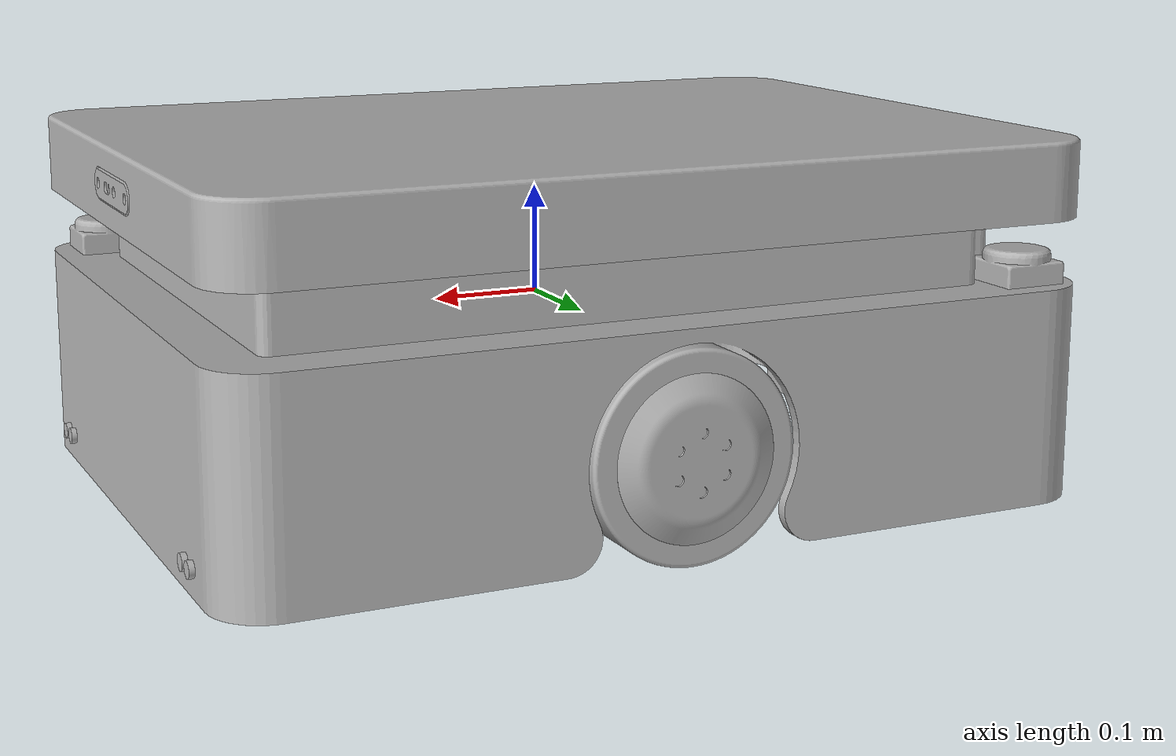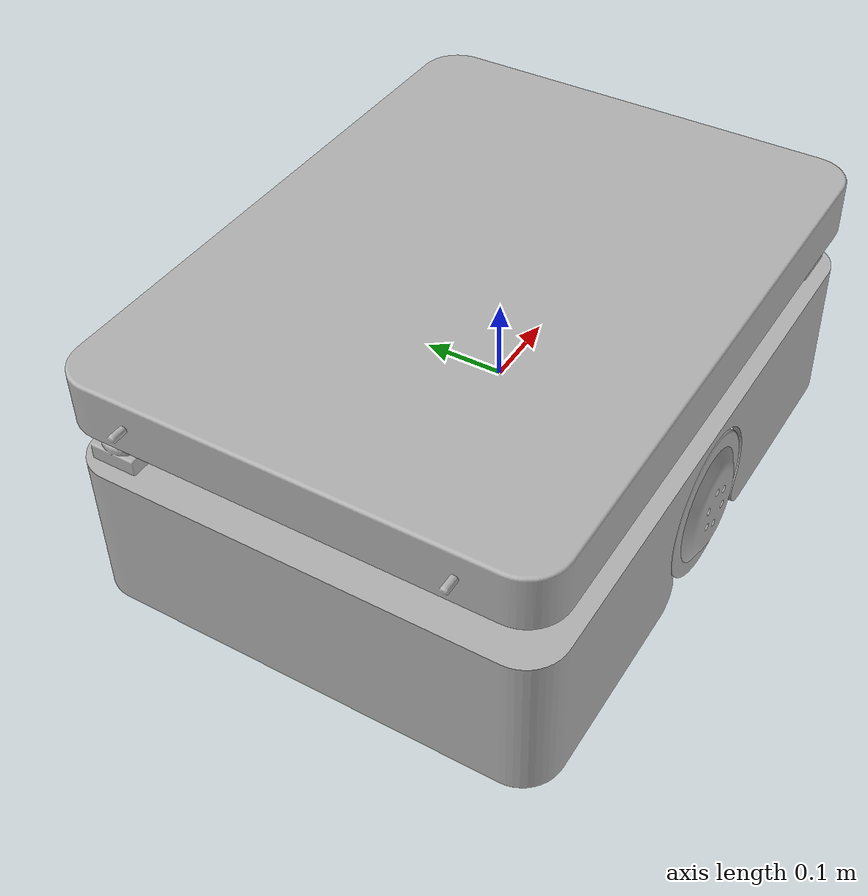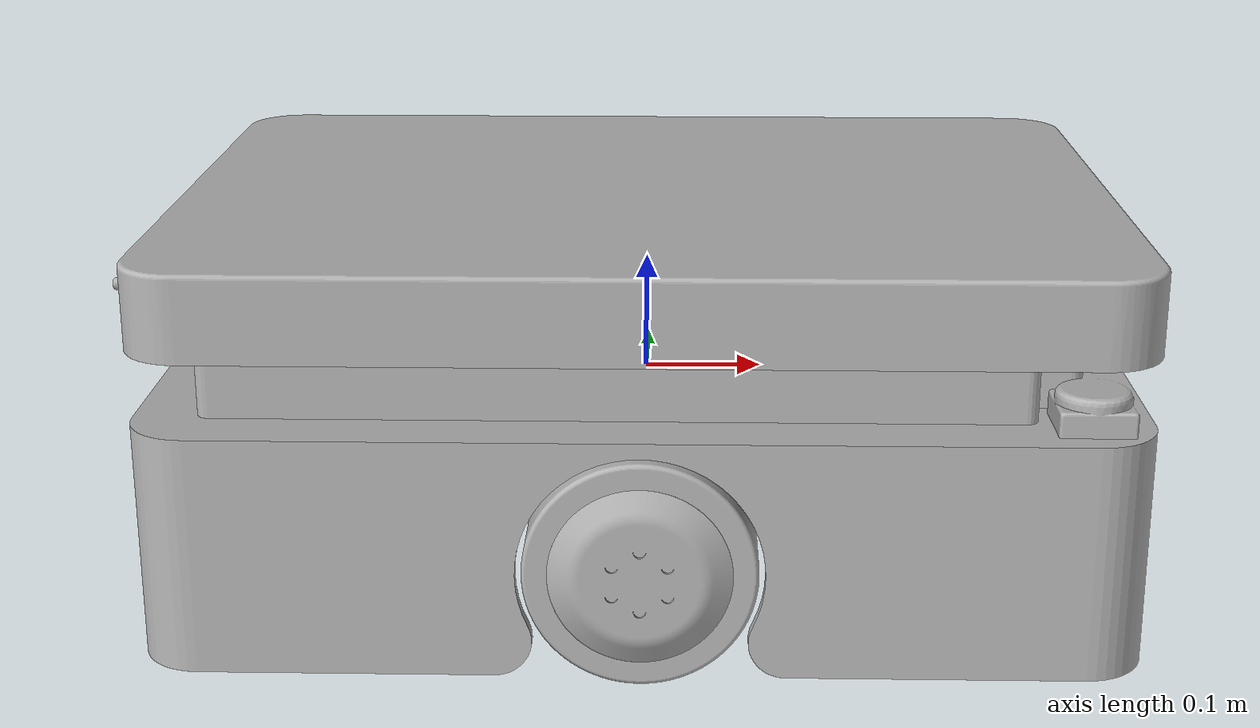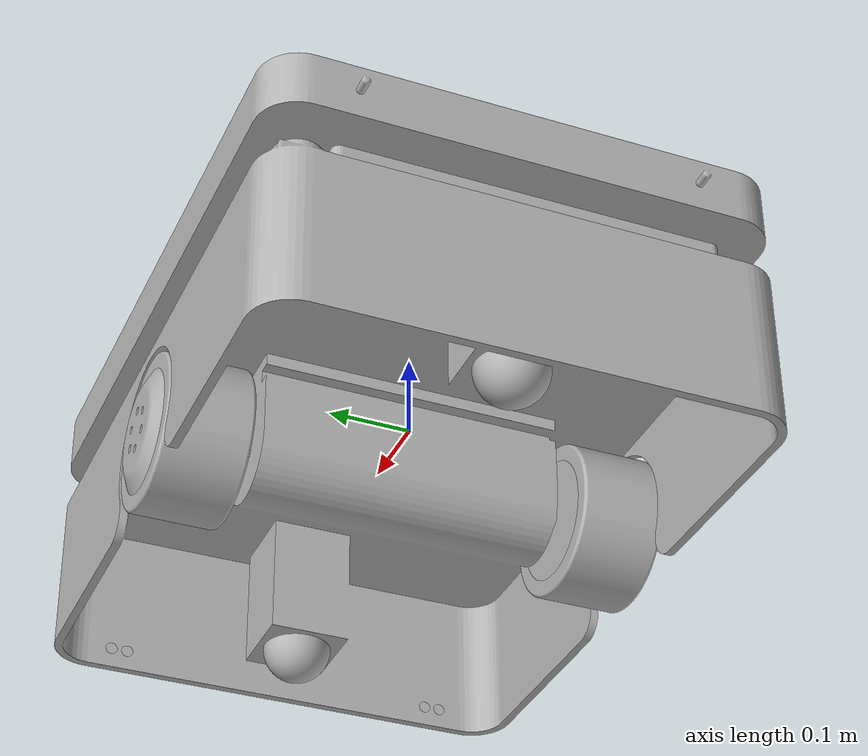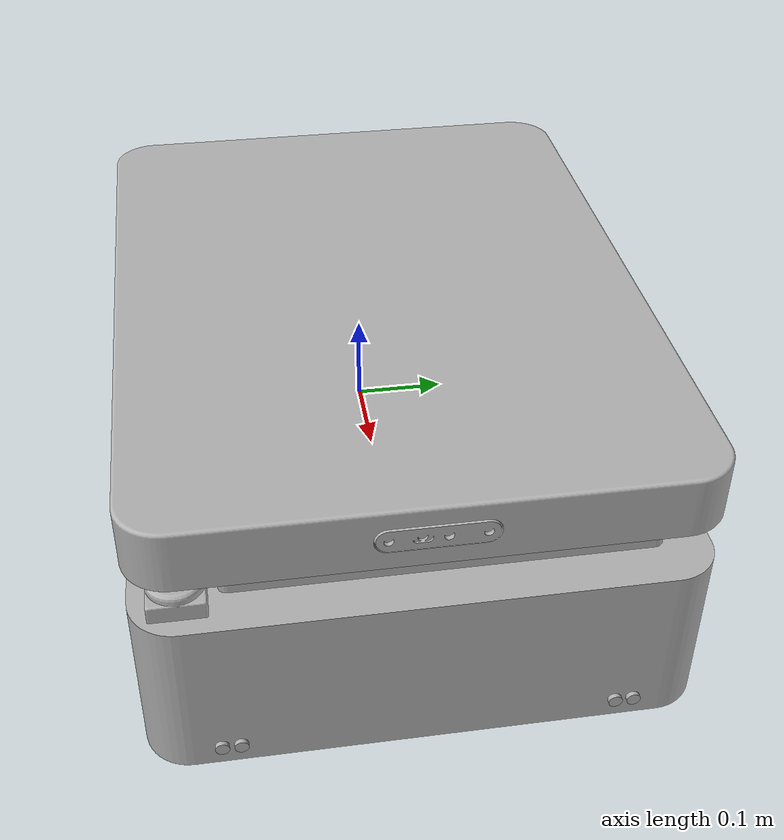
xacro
<?xml version="1.0" ?>
<robot name="amr_big_two" xmlns:xacro="http://www.ros.org/wiki/xacro">

<xacro:include filename="$(find amr_big_two_description)/urdf/materials.xacro" />
<xacro:include filename="$(find amr_big_two_description)/urdf/amr_big_two.trans" />
<xacro:include filename="$(find amr_big_two_description)/urdf/amr_big_two.gazebo" />
<xacro:include filename="$(find amr_big_two_description)/urdf/diff_dr.xacro" />
<xacro:include filename="$(find amr_big_two_description)/urdf/depth_cam.xacro" />

<link name="depth_link"/>
<link name="camera_link"/>
<link name='depth_link_optical'/>

<joint name="fix_depth" type="fixed">
  <parent link="depth_link"/>
  <child link="depth_link_optical"/>
  <origin xyz="0 0 0" rpy="-1.57 0 -1.57"/>
</joint>

<joint name="depth" type="fixed">
  <parent link="cam_v1_1"/>
  <child link="depth_link"/>
  <origin xyz="0.4 0 0" rpy="0 0 0"/>
</joint>

<joint name="camera" type="fixed">
  <parent link="cam_v1_1"/>
  <child link="camera_link"/>
  <origin xyz="0.4 0 0" rpy="0 0 0"/>
</joint>

<link name="base_link">
  <inertial>
    <origin xyz="-6.322323894127283e-05 0.018906569789233326 -0.030654111720942918" rpy="0 0 0"/>
    <mass value="120.91992932004462"/>
    <inertia ixx="2.794961" iyy="6.095063" izz="8.20746" ixy="0.136031" iyz="-0.0" ixz="-0.000844"/>
  </inertial>
  <visual>
    <origin xyz="0 0 0" rpy="0 0 0"/>
    <geometry>
      <mesh filename="file://$(find amr_big_two_description)/meshes/base_link.stl" scale="0.001 0.001 0.001"/>
    </geometry>
    <material name="silver"/>
  </visual>
  <collision>
    <origin xyz="0 0 0" rpy="0 0 0"/>
    <geometry>
      <mesh filename="file://$(find amr_big_two_description)/meshes/base_link.stl" scale="0.001 0.001 0.001"/>
    </geometry>
  </collision>
</link>

<link name="part5_v1__2__1">
  <inertial>
    <origin xyz="4.3906878133270766e-10 -4.302464876940193e-07 -4.306855561631018e-07" rpy="0 0 0"/>
    <mass value="2.40589382113527"/>
    <inertia ixx="0.001679" iyy="0.001686" izz="0.001686" ixy="-0.0" iyz="0.0" ixz="0.0"/>
  </inertial>
  <visual>
    <origin xyz="-0.325 -0.018907 0.131093" rpy="0 0 0"/>
    <geometry>
      <mesh filename="file://$(find amr_big_two_description)/meshes/part5_v1__2__1.stl" scale="0.001 0.001 0.001"/>
    </geometry>
    <material name="silver"/>
  </visual>
  <collision>
    <origin xyz="-0.325 -0.018907 0.131093" rpy="0 0 0"/>
    <geometry>
      <mesh filename="file://$(find amr_big_two_description)/meshes/part5_v1__2__1.stl" scale="0.001 0.001 0.001"/>
    </geometry>
  </collision>
</link>

<link name="part5_v1__3__1">
  <inertial>
    <origin xyz="4.390676155985318e-10 -4.302464877738166e-07 -4.306855559965683e-07" rpy="0 0 0"/>
    <mass value="2.40589382113527"/>
    <inertia ixx="0.001686" iyy="0.001686" izz="0.001679" ixy="0.0" iyz="0.0" ixz="-0.0"/>
  </inertial>
  <visual>
    <origin xyz="0.325 -0.018907 0.131093" rpy="0 0 0"/>
    <geometry>
      <mesh filename="file://$(find amr_big_two_description)/meshes/part5_v1__3__1.stl" scale="0.001 0.001 0.001"/>
    </geometry>
    <material name="silver"/>
  </visual>
  <collision>
    <origin xyz="0.325 -0.018907 0.131093" rpy="0 0 0"/>
    <geometry>
      <mesh filename="file://$(find amr_big_two_description)/meshes/part5_v1__3__1.stl" scale="0.001 0.001 0.001"/>
    </geometry>
  </collision>
</link>

<link name="part5_v1_1">
  <inertial>
    <origin xyz="-9.626552663696415e-10 0.05374742111416567 -4.30685568639233e-07" rpy="0 0 0"/>
    <mass value="4.855896297034494"/>
    <inertia ixx="0.010976" iyy="0.012566" izz="0.010976" ixy="0.0" iyz="-0.0" ixz="0.0"/>
  </inertial>
  <visual>
    <origin xyz="-0.0 -0.218907 0.081093" rpy="0 0 0"/>
    <geometry>
      <mesh filename="file://$(find amr_big_two_description)/meshes/part5_v1_1.stl" scale="0.001 0.001 0.001"/>
    </geometry>
    <material name="silver"/>
  </visual>
  <collision>
    <origin xyz="-0.0 -0.218907 0.081093" rpy="0 0 0"/>
    <geometry>
      <mesh filename="file://$(find amr_big_two_description)/meshes/part5_v1_1.stl" scale="0.001 0.001 0.001"/>
    </geometry>
  </collision>
</link>

<link name="part4_v2_1">
  <inertial>
    <origin xyz="6.415449444004547e-09 -0.05000043024648709 -4.3068555380387785e-07" rpy="0 0 0"/>
    <mass value="1.0491385705895424"/>
    <inertia ixx="0.00449" iyy="0.007241" izz="0.00449" ixy="0.0" iyz="-0.0" ixz="-0.0"/>
  </inertial>
  <visual>
    <origin xyz="-0.0 -0.318907 0.081093" rpy="0 0 0"/>
    <geometry>
      <mesh filename="file://$(find amr_big_two_description)/meshes/part4_v2_1.stl" scale="0.001 0.001 0.001"/>
    </geometry>
    <material name="silver"/>
  </visual>
  <collision>
    <origin xyz="-0.0 -0.318907 0.081093" rpy="0 0 0"/>
    <geometry>
      <mesh filename="file://$(find amr_big_two_description)/meshes/part4_v2_1.stl" scale="0.001 0.001 0.001"/>
    </geometry>
  </collision>
</link>

<link name="part5_v1__1__1">
  <inertial>
    <origin xyz="-9.62655217658419e-10 -0.053748281607141346 -4.306855433816592e-07" rpy="0 0 0"/>
    <mass value="4.855896297034494"/>
    <inertia ixx="0.010976" iyy="0.012566" izz="0.010976" ixy="-0.0" iyz="-0.0" ixz="-0.0"/>
  </inertial>
  <visual>
    <origin xyz="-0.0 0.181093 0.081093" rpy="0 0 0"/>
    <geometry>
      <mesh filename="file://$(find amr_big_two_description)/meshes/part5_v1__1__1.stl" scale="0.001 0.001 0.001"/>
    </geometry>
    <material name="silver"/>
  </visual>
  <collision>
    <origin xyz="-0.0 0.181093 0.081093" rpy="0 0 0"/>
    <geometry>
      <mesh filename="file://$(find amr_big_two_description)/meshes/part5_v1__1__1.stl" scale="0.001 0.001 0.001"/>
    </geometry>
  </collision>
</link>

<link name="part4_v2__1__1">
  <inertial>
    <origin xyz="6.415449493156268e-09 0.04999956975351136 -4.3068555424796706e-07" rpy="0 0 0"/>
    <mass value="1.0491385705895424"/>
    <inertia ixx="0.00449" iyy="0.007241" izz="0.00449" ixy="0.0" iyz="-0.0" ixz="-0.0"/>
  </inertial>
  <visual>
    <origin xyz="-0.0 0.281093 0.081093" rpy="0 0 0"/>
    <geometry>
      <mesh filename="file://$(find amr_big_two_description)/meshes/part4_v2__1__1.stl" scale="0.001 0.001 0.001"/>
    </geometry>
    <material name="silver"/>
  </visual>
  <collision>
    <origin xyz="-0.0 0.281093 0.081093" rpy="0 0 0"/>
    <geometry>
      <mesh filename="file://$(find amr_big_two_description)/meshes/part4_v2__1__1.stl" scale="0.001 0.001 0.001"/>
    </geometry>
  </collision>
</link>

<link name="cam_v1_1">
  <inertial>
    <origin xyz="0.013281155022479785 -0.0474661631573977 -4.3068555617697957e-07" rpy="0 0 0"/>
    <mass value="0.7372993663827108"/>
    <inertia ixx="0.000892" iyy="8.8e-05" izz="0.000888" ixy="-1e-06" iyz="-0.0" ixz="-0.0"/>
  </inertial>
  <visual>
    <origin xyz="-0.374 -0.066407 -0.123907" rpy="0 0 0"/>
    <geometry>
      <mesh filename="file://$(find amr_big_two_description)/meshes/cam_v1_1.stl" scale="0.001 0.001 0.001"/>
    </geometry>
    <material name="silver"/>
  </visual>
  <collision>
    <origin xyz="-0.374 -0.066407 -0.123907" rpy="0 0 0"/>
    <geometry>
      <mesh filename="file://$(find amr_big_two_description)/meshes/cam_v1_1.stl" scale="0.001 0.001 0.001"/>
    </geometry>
  </collision>
</link>

<link name="part2_v2_1">
  <inertial>
    <origin xyz="-0.34999155687100597 -0.020007576954818838 0.034342740694503535" rpy="0 0 0"/>
    <mass value="4.521693370371786"/>
    <inertia ixx="0.175661" iyy="0.297913" izz="0.470272" ixy="-0.00279" iyz="1e-06" ixz="-1e-06"/>
  </inertial>
  <visual>
    <origin xyz="-0.35 -0.038907 -0.028907" rpy="0 0 0"/>
    <geometry>
      <mesh filename="file://$(find amr_big_two_description)/meshes/part2_v2_1.stl" scale="0.001 0.001 0.001"/>
    </geometry>
    <material name="silver"/>
  </visual>
  <collision>
    <origin xyz="-0.35 -0.038907 -0.028907" rpy="0 0 0"/>
    <geometry>
      <mesh filename="file://$(find amr_big_two_description)/meshes/part2_v2_1.stl" scale="0.001 0.001 0.001"/>
    </geometry>
  </collision>
</link>

<link name="part7_v1_1">
  <inertial>
    <origin xyz="0.007500000439068566 -4.3024648671563526e-07 -4.306855559965683e-07" rpy="0 0 0"/>
    <mass value="0.02080814259151114"/>
    <inertia ixx="1e-06" iyy="1e-06" izz="1e-06" ixy="-0.0" iyz="0.0" ixz="0.0"/>
  </inertial>
  <visual>
    <origin xyz="-0.39 -0.238907 0.141093" rpy="0 0 0"/>
    <geometry>
      <mesh filename="file://$(find amr_big_two_description)/meshes/part7_v1_1.stl" scale="0.001 0.001 0.001"/>
    </geometry>
    <material name="silver"/>
  </visual>
  <collision>
    <origin xyz="-0.39 -0.238907 0.141093" rpy="0 0 0"/>
    <geometry>
      <mesh filename="file://$(find amr_big_two_description)/meshes/part7_v1_1.stl" scale="0.001 0.001 0.001"/>
    </geometry>
  </collision>
</link>

<link name="part7_v1__1__1">
  <inertial>
    <origin xyz="0.007500000439068566 -4.3024648660461295e-07 -4.306855559410572e-07" rpy="0 0 0"/>
    <mass value="0.02080814259151114"/>
    <inertia ixx="1e-06" iyy="1e-06" izz="1e-06" ixy="-0.0" iyz="0.0" ixz="0.0"/>
  </inertial>
  <visual>
    <origin xyz="-0.39 -0.218907 0.141093" rpy="0 0 0"/>
    <geometry>
      <mesh filename="file://$(find amr_big_two_description)/meshes/part7_v1__1__1.stl" scale="0.001 0.001 0.001"/>
    </geometry>
    <material name="silver"/>
  </visual>
  <collision>
    <origin xyz="-0.39 -0.218907 0.141093" rpy="0 0 0"/>
    <geometry>
      <mesh filename="file://$(find amr_big_two_description)/meshes/part7_v1__1__1.stl" scale="0.001 0.001 0.001"/>
    </geometry>
  </collision>
</link>

<link name="part7_v1__3__1">
  <inertial>
    <origin xyz="0.0075000004390688435 -4.3024648785361386e-07 -4.306855561631018e-07" rpy="0 0 0"/>
    <mass value="0.02080814259151114"/>
    <inertia ixx="1e-06" iyy="1e-06" izz="1e-06" ixy="0.0" iyz="0.0" ixz="-0.0"/>
  </inertial>
  <visual>
    <origin xyz="-0.39 0.181093 0.141093" rpy="0 0 0"/>
    <geometry>
      <mesh filename="file://$(find amr_big_two_description)/meshes/part7_v1__3__1.stl" scale="0.001 0.001 0.001"/>
    </geometry>
    <material name="silver"/>
  </visual>
  <collision>
    <origin xyz="-0.39 0.181093 0.141093" rpy="0 0 0"/>
    <geometry>
      <mesh filename="file://$(find amr_big_two_description)/meshes/part7_v1__3__1.stl" scale="0.001 0.001 0.001"/>
    </geometry>
  </collision>
</link>

<link name="part7_v1__2__1">
  <inertial>
    <origin xyz="0.0075000004390688435 -4.302464879368806e-07 -4.306855561631018e-07" rpy="0 0 0"/>
    <mass value="0.02080814259151114"/>
    <inertia ixx="1e-06" iyy="1e-06" izz="1e-06" ixy="0.0" iyz="-0.0" ixz="0.0"/>
  </inertial>
  <visual>
    <origin xyz="-0.39 0.201093 0.141093" rpy="0 0 0"/>
    <geometry>
      <mesh filename="file://$(find amr_big_two_description)/meshes/part7_v1__2__1.stl" scale="0.001 0.001 0.001"/>
    </geometry>
    <material name="silver"/>
  </visual>
  <collision>
    <origin xyz="-0.39 0.201093 0.141093" rpy="0 0 0"/>
    <geometry>
      <mesh filename="file://$(find amr_big_two_description)/meshes/part7_v1__2__1.stl" scale="0.001 0.001 0.001"/>
    </geometry>
  </collision>
</link>

<link name="part3_v1_1">
  <inertial>
    <origin xyz="-0.0004887973730421225 -4.309599892400595e-07 0.03497672917266807" rpy="0 0 0"/>
    <mass value="29.80443565344521"/>
    <inertia ixx="1.027826" iyy="1.750686" izz="2.729484" ixy="0.0" iyz="0.0" ixz="0.0"/>
  </inertial>
  <visual>
    <origin xyz="-0.0 -0.018907 -0.088907" rpy="0 0 0"/>
    <geometry>
      <mesh filename="file://$(find amr_big_two_description)/meshes/part3_v1_1.stl" scale="0.001 0.001 0.001"/>
    </geometry>
    <material name="silver"/>
  </visual>
  <collision>
    <origin xyz="-0.0 -0.018907 -0.088907" rpy="0 0 0"/>
    <geometry>
      <mesh filename="file://$(find amr_big_two_description)/meshes/part3_v1_1.stl" scale="0.001 0.001 0.001"/>
    </geometry>
  </collision>
</link>

<link name="front_lidar_link"/>
<link name="back_lidar_link"/>
<link name="laser_link"/>
<link name="imu_link"/>

<joint name="Ball 1" type="continuous">
  <origin xyz="0.325 0.018907 -0.131093" rpy="0 0 0"/>
  <parent link="base_link"/>
  <child link="part5_v1__2__1"/>
  <axis xyz="1.0 0.0 0.0"/>
</joint>

<joint name="Ball 2" type="continuous">
  <origin xyz="-0.325 0.018907 -0.131093" rpy="0 0 0"/>
  <parent link="base_link"/>
  <child link="part5_v1__3__1"/>
  <axis xyz="1.0 0.0 0.0"/>
</joint>

<joint name="Revolute 3" type="continuous">
  <origin xyz="0.0 0.218907 -0.081093" rpy="0 0 0"/>
  <parent link="base_link"/>
  <child link="part5_v1_1"/>
  <axis xyz="-0.0 1.0 0.0"/>
</joint>

<joint name="Rigid 4" type="fixed">
  <origin xyz="0.0 0.1 0.0" rpy="0 0 0"/>
  <parent link="part5_v1_1"/>
  <child link="part4_v2_1"/>
</joint>

<joint name="Revolute 5" type="continuous">
  <origin xyz="0.0 -0.181093 -0.081093" rpy="0 0 0"/>
  <parent link="base_link"/>
  <child link="part5_v1__1__1"/>
  <axis xyz="0.0 1.0 0.0"/>
</joint>

<joint name="Rigid 6" type="fixed">
  <origin xyz="0.0 -0.1 0.0" rpy="0 0 0"/>
  <parent link="part5_v1__1__1"/>
  <child link="part4_v2__1__1"/>
</joint>

<joint name="Rigid 7" type="fixed">
  <origin xyz="0.374 0.0475 0.035" rpy="0 0 0"/>
  <parent link="part3_v1_1"/>
  <child link="cam_v1_1"/>
</joint>

<joint name="Rigid 8" type="fixed">
  <origin xyz="0.35 0.038907 0.028907" rpy="0 0 0"/>
  <parent link="base_link"/>
  <child link="part2_v2_1"/>
</joint>

<joint name="Rigid 10" type="fixed">
  <origin xyz="0.39 0.238907 -0.141093" rpy="0 0 0"/>
  <parent link="base_link"/>
  <child link="part7_v1_1"/>
</joint>

<joint name="Rigid 11" type="fixed">
  <origin xyz="0.39 0.218907 -0.141093" rpy="0 0 0"/>
  <parent link="base_link"/>
  <child link="part7_v1__1__1"/>
</joint>

<joint name="Rigid 12" type="fixed">
  <origin xyz="0.39 -0.181093 -0.141093" rpy="0 0 0"/>
  <parent link="base_link"/>
  <child link="part7_v1__3__1"/>
</joint>

<joint name="Rigid 13" type="fixed">
  <origin xyz="0.39 -0.201093 -0.141093" rpy="0 0 0"/>
  <parent link="base_link"/>
  <child link="part7_v1__2__1"/>
</joint>

<joint name="Rigid 14" type="fixed">
  <origin xyz="-0.35 -0.02 0.06" rpy="0 0 0"/>
  <parent link="part2_v2_1"/>
  <child link="part3_v1_1"/>
</joint>

<joint name="front_lidar_joint" type="fixed">
  <parent link="base_link"/>
  <child link="front_lidar_link"/>
  <origin xyz="0.35 -0.25 0.06" rpy="0 0 0"/>
</joint>

<joint name="imu" type="fixed">
  <parent link="base_link"/>
  <child link="imu_link"/>
  <origin xyz="0.0 0.0 0.04" rpy="0 0 0"/>
</joint>

<joint name="back_lidar_joint" type="fixed">
  <parent link="base_link"/>
  <child link="back_lidar_link"/>
  <origin xyz="-0.35 0.3 0.06" rpy="0 0 0"/>
</joint>

<joint name="laser" type="fixed">
  <parent link="base_link"/>
  <child link="laser_link"/>
  <origin xyz="0.0 0.0 0.06" rpy="0 0 0"/>
</joint>

</robot>

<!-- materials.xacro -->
<robot name="amr_big_two" xmlns:xacro="http://www.ros.org/wiki/xacro" >

<material name="silver">
  <color rgba="0.700 0.700 0.700 1.000"/>
</material>

</robot>

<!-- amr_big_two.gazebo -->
<robot name="amr_big_two" xmlns:xacro="http://www.ros.org/wiki/xacro" >

<xacro:property name="body_color" value="Gazebo/Silver" />

<gazebo>
  <plugin name="control" filename="libgazebo_ros_control.so"/>
</gazebo>
<gazebo reference="base_link">
  <material>${body_color}</material>
  <mu1>0.2</mu1>
  <mu2>0.2</mu2>
  <self_collide>true</self_collide>
  <gravity>true</gravity>
</gazebo>

<gazebo reference="part5_v1__2__1">
  <material>${body_color}</material>
  <mu1>0.2</mu1>
  <mu2>0.2</mu2>
  <self_collide>true</self_collide>
</gazebo>

<gazebo reference="part5_v1__3__1">
  <material>${body_color}</material>
  <mu1>0.2</mu1>
  <mu2>0.2</mu2>
  <self_collide>true</self_collide>
</gazebo>

<gazebo reference="part5_v1_1">
  <material>${body_color}</material>
  <mu1>0.2</mu1>
  <mu2>0.2</mu2>
  <self_collide>true</self_collide>
</gazebo>

<gazebo reference="part4_v2_1">
  <material>${body_color}</material>
  <mu1>0.2</mu1>
  <mu2>0.2</mu2>
  <self_collide>true</self_collide>
</gazebo>

<gazebo reference="part5_v1__1__1">
  <material>${body_color}</material>
  <mu1>0.2</mu1>
  <mu2>0.2</mu2>
  <self_collide>true</self_collide>
</gazebo>

<gazebo reference="part4_v2__1__1">
  <material>${body_color}</material>
  <mu1>0.2</mu1>
  <mu2>0.2</mu2>
  <self_collide>true</self_collide>
</gazebo>

<gazebo reference="cam_v1_1">
  <material>${body_color}</material>
  <mu1>0.2</mu1>
  <mu2>0.2</mu2>
  <self_collide>true</self_collide>
</gazebo>

<gazebo reference="part2_v2_1">
  <material>${body_color}</material>
  <mu1>0.2</mu1>
  <mu2>0.2</mu2>
  <self_collide>true</self_collide>
</gazebo>

<gazebo reference="part7_v1_1">
  <material>${body_color}</material>
  <mu1>0.2</mu1>
  <mu2>0.2</mu2>
  <self_collide>true</self_collide>
</gazebo>

<gazebo reference="part7_v1__1__1">
  <material>${body_color}</material>
  <mu1>0.2</mu1>
  <mu2>0.2</mu2>
  <self_collide>true</self_collide>
</gazebo>

<gazebo reference="part7_v1__3__1">
  <material>${body_color}</material>
  <mu1>0.2</mu1>
  <mu2>0.2</mu2>
  <self_collide>true</self_collide>
</gazebo>

<gazebo reference="part7_v1__2__1">
  <material>${body_color}</material>
  <mu1>0.2</mu1>
  <mu2>0.2</mu2>
  <self_collide>true</self_collide>
</gazebo>

<gazebo reference="part3_v1_1">
  <material>${body_color}</material>
  <mu1>0.2</mu1>
  <mu2>0.2</mu2>
  <self_collide>true</self_collide>
</gazebo>

</robot>
